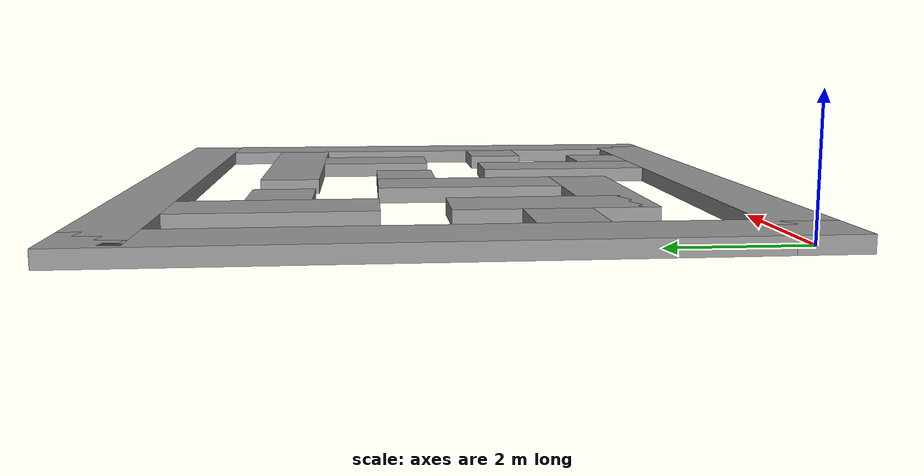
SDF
<?xml version='1.0'?>
<sdf version='1.7'>
  <model name='maze'>
    <pose>4.5 4.5 0 0 -0 0</pose>
    <link name='Wall_11'>
      <collision name='Wall_11_Collision'>
        <geometry>
          <box>
            <size>10 1 0.25</size>
          </box>
        </geometry>
        <pose>0 0 0.125 0 -0 0</pose>
      </collision>
      <visual name='Wall_11_Visual'>
        <pose>0 0 0.125 0 -0 0</pose>
        <geometry>
          <box>
            <size>10 1 0.25</size>
          </box>
        </geometry>
        <material>
          <script>
            <uri>file://media/materials/scripts/gazebo.material</uri>
            <name>Gazebo/Grey</name>
          </script>
          <ambient>1 1 1 1</ambient>
        </material>
        <meta>
          <layer>0</layer>
        </meta>
      </visual>
      <pose>-0 4.5 0 0 -0 3.14159</pose>
    </link>
    <link name='Wall_13'>
      <collision name='Wall_13_Collision'>
        <geometry>
          <box>
            <size>4 1 0.25</size>
          </box>
        </geometry>
        <pose>0 0 0.125 0 -0 0</pose>
      </collision>
      <visual name='Wall_13_Visual'>
        <pose>0 0 0.125 0 -0 0</pose>
        <geometry>
          <box>
            <size>4 1 0.25</size>
          </box>
        </geometry>
        <material>
          <script>
            <uri>file://media/materials/scripts/gazebo.material</uri>
            <name>Gazebo/Grey</name>
          </script>
          <ambient>1 1 1 1</ambient>
        </material>
        <meta>
          <layer>0</layer>
        </meta>
      </visual>
      <pose>-2.5 3 0 0 -0 -1.5708</pose>
    </link>
    <link name='Wall_17'>
      <collision name='Wall_17_Collision'>
        <geometry>
          <box>
            <size>1 1 0.25</size>
          </box>
        </geometry>
        <pose>0 0 0.125 0 -0 0</pose>
      </collision>
      <visual name='Wall_17_Visual'>
        <pose>0 0 0.125 0 -0 0</pose>
        <geometry>
          <box>
            <size>1 1 0.25</size>
          </box>
        </geometry>
        <material>
          <script>
            <uri>file://media/materials/scripts/gazebo.material</uri>
            <name>Gazebo/Grey</name>
          </script>
          <ambient>1 1 1 1</ambient>
        </material>
        <meta>
          <layer>0</layer>
        </meta>
      </visual>
      <pose>-1.5 2.5 0 0 -0 0</pose>
    </link>
    <link name='Wall_19'>
      <collision name='Wall_19_Collision'>
        <geometry>
          <box>
            <size>4 1 0.25</size>
          </box>
        </geometry>
        <pose>0 0 0.125 0 -0 0</pose>
      </collision>
      <visual name='Wall_19_Visual'>
        <pose>0 0 0.125 0 -0 0</pose>
        <geometry>
          <box>
            <size>4 1 0.25</size>
          </box>
        </geometry>
        <material>
          <script>
            <uri>file://media/materials/scripts/gazebo.material</uri>
            <name>Gazebo/Grey</name>
          </script>
          <ambient>1 1 1 1</ambient>
        </material>
        <meta>
          <layer>0</layer>
        </meta>
      </visual>
      <pose>2 2.5 0 0 -0 3.14159</pose>
    </link>
    <link name='Wall_21'>
      <collision name='Wall_21_Collision'>
        <geometry>
          <box>
            <size>2 1 0.25</size>
          </box>
        </geometry>
        <pose>0 0 0.125 0 -0 0</pose>
      </collision>
      <visual name='Wall_21_Visual'>
        <pose>0 0 0.125 0 -0 0</pose>
        <geometry>
          <box>
            <size>2 1 0.25</size>
          </box>
        </geometry>
        <material>
          <script>
            <uri>file://media/materials/scripts/gazebo.material</uri>
            <name>Gazebo/Grey</name>
          </script>
          <ambient>1 1 1 1</ambient>
        </material>
        <meta>
          <layer>0</layer>
        </meta>
      </visual>
      <pose>2.5 1 0 0 -0 1.5708</pose>
    </link>
    <link name='Wall_23'>
      <collision name='Wall_23_Collision'>
        <geometry>
          <box>
            <size>1 1 0.25</size>
          </box>
        </geometry>
        <pose>0 0 0.125 0 -0 0</pose>
      </collision>
      <visual name='Wall_23_Visual'>
        <pose>0 0 0.125 0 -0 0</pose>
        <geometry>
          <box>
            <size>1 1 0.25</size>
          </box>
        </geometry>
        <material>
          <script>
            <uri>file://media/materials/scripts/gazebo.material</uri>
            <name>Gazebo/Grey</name>
          </script>
          <ambient>1 1 1 1</ambient>
        </material>
        <meta>
          <layer>0</layer>
        </meta>
      </visual>
      <pose>-3.5 -1.5 0 0 -0 0</pose>
    </link>
    <link name='Wall_25'>
      <collision name='Wall_25_Collision'>
        <geometry>
          <box>
            <size>3 1 0.25</size>
          </box>
        </geometry>
        <pose>0 0 0.125 0 -0 0</pose>
      </collision>
      <visual name='Wall_25_Visual'>
        <pose>0 0 0.125 0 -0 0</pose>
        <geometry>
          <box>
            <size>3 1 0.25</size>
          </box>
        </geometry>
        <material>
          <script>
            <uri>file://media/materials/scripts/gazebo.material</uri>
            <name>Gazebo/Grey</name>
          </script>
          <ambient>1 1 1 1</ambient>
        </material>
        <meta>
          <layer>0</layer>
        </meta>
      </visual>
      <pose>-2.5 -1.5 0 0 -0 -1.5708</pose>
    </link>
    <link name='Wall_30'>
      <collision name='Wall_30_Collision'>
        <geometry>
          <box>
            <size>3 1 0.25</size>
          </box>
        </geometry>
        <pose>0 0 0.125 0 -0 0</pose>
      </collision>
      <visual name='Wall_30_Visual'>
        <pose>0 0 0.125 0 -0 0</pose>
        <geometry>
          <box>
            <size>3 1 0.25</size>
          </box>
        </geometry>
        <material>
          <script>
            <uri>file://media/materials/scripts/gazebo.material</uri>
            <name>Gazebo/Grey</name>
          </script>
          <ambient>1 1 1 1</ambient>
        </material>
        <meta>
          <layer>0</layer>
        </meta>
      </visual>
      <pose>-1.5 -2.5 0 0 -0 0</pose>
    </link>
    <link name='Wall_32'>
      <collision name='Wall_32_Collision'>
        <geometry>
          <box>
            <size>4 1 0.25</size>
          </box>
        </geometry>
        <pose>0 0 0.125 0 -0 0</pose>
      </collision>
      <visual name='Wall_32_Visual'>
        <pose>0 0 0.125 0 -0 0</pose>
        <geometry>
          <box>
            <size>4 1 0.25</size>
          </box>
        </geometry>
        <material>
          <script>
            <uri>file://media/materials/scripts/gazebo.material</uri>
            <name>Gazebo/Grey</name>
          </script>
          <ambient>1 1 1 1</ambient>
        </material>
        <meta>
          <layer>0</layer>
        </meta>
      </visual>
      <pose>-0.5 -1 0 0 -0 1.5708</pose>
    </link>
    <link name='Wall_34'>
      <collision name='Wall_34_Collision'>
        <geometry>
          <box>
            <size>1 1 0.25</size>
          </box>
        </geometry>
        <pose>0 0 0.125 0 -0 0</pose>
      </collision>
      <visual name='Wall_34_Visual'>
        <pose>0 0 0.125 0 -0 0</pose>
        <geometry>
          <box>
            <size>1 1 0.25</size>
          </box>
        </geometry>
        <material>
          <script>
            <uri>file://media/materials/scripts/gazebo.material</uri>
            <name>Gazebo/Grey</name>
          </script>
          <ambient>1 1 1 1</ambient>
        </material>
        <meta>
          <layer>0</layer>
        </meta>
      </visual>
      <pose>0.5 0.5 0 0 -0 0</pose>
    </link>
    <link name='Wall_36'>
      <collision name='Wall_36_Collision'>
        <geometry>
          <box>
            <size>1 1 0.25</size>
          </box>
        </geometry>
        <pose>0 0 0.125 0 -0 0</pose>
      </collision>
      <visual name='Wall_36_Visual'>
        <pose>0 0 0.125 0 -0 0</pose>
        <geometry>
          <box>
            <size>1 1 0.25</size>
          </box>
        </geometry>
        <material>
          <script>
            <uri>file://media/materials/scripts/gazebo.material</uri>
            <name>Gazebo/Grey</name>
          </script>
          <ambient>1 1 1 1</ambient>
        </material>
        <meta>
          <layer>0</layer>
        </meta>
      </visual>
      <pose>3.5 -1.5 0 0 -0 0</pose>
    </link>
    <link name='Wall_38'>
      <collision name='Wall_38_Collision'>
        <geometry>
          <box>
            <size>3 1 0.25</size>
          </box>
        </geometry>
        <pose>0 0 0.125 0 -0 0</pose>
      </collision>
      <visual name='Wall_38_Visual'>
        <pose>0 0 0.125 0 -0 0</pose>
        <geometry>
          <box>
            <size>3 1 0.25</size>
          </box>
        </geometry>
        <material>
          <script>
            <uri>file://media/materials/scripts/gazebo.material</uri>
            <name>Gazebo/Grey</name>
          </script>
          <ambient>1 1 1 1</ambient>
        </material>
        <meta>
          <layer>0</layer>
        </meta>
      </visual>
      <pose>1.5 -2.5 0 0 -0 1.5708</pose>
    </link>
    <link name='Wall_40'>
      <collision name='Wall_40_Collision'>
        <geometry>
          <box>
            <size>1 1 0.25</size>
          </box>
        </geometry>
        <pose>0 0 0.125 0 -0 0</pose>
      </collision>
      <visual name='Wall_40_Visual'>
        <pose>0 0 0.125 0 -0 0</pose>
        <geometry>
          <box>
            <size>1 1 0.25</size>
          </box>
        </geometry>
        <material>
          <script>
            <uri>file://media/materials/scripts/gazebo.material</uri>
            <name>Gazebo/Grey</name>
          </script>
          <ambient>1 1 1 1</ambient>
        </material>
        <meta>
          <layer>0</layer>
        </meta>
      </visual>
      <pose>2.5 -3.5 0 0 -0 0</pose>
    </link>
    <link name='Wall_5'>
      <collision name='Wall_5_Collision'>
        <geometry>
          <box>
            <size>10 1 0.25</size>
          </box>
        </geometry>
        <pose>0 0 0.125 0 -0 0</pose>
      </collision>
      <visual name='Wall_5_Visual'>
        <pose>0 0 0.125 0 -0 0</pose>
        <geometry>
          <box>
            <size>10 1 0.25</size>
          </box>
        </geometry>
        <material>
          <script>
            <uri>file://media/materials/scripts/gazebo.material</uri>
            <name>Gazebo/Grey</name>
          </script>
          <ambient>1 1 1 1</ambient>
        </material>
        <meta>
          <layer>0</layer>
        </meta>
      </visual>
      <pose>-4.5 0 0 0 -0 1.5708</pose>
    </link>
    <link name='Wall_7'>
      <collision name='Wall_7_Collision'>
        <geometry>
          <box>
            <size>10 1 0.25</size>
          </box>
        </geometry>
        <pose>0 0 0.125 0 -0 0</pose>
      </collision>
      <visual name='Wall_7_Visual'>
        <pose>0 0 0.125 0 -0 0</pose>
        <geometry>
          <box>
            <size>10 1 0.25</size>
          </box>
        </geometry>
        <material>
          <script>
            <uri>file://media/materials/scripts/gazebo.material</uri>
            <name>Gazebo/Grey</name>
          </script>
          <ambient>1 1 1 1</ambient>
        </material>
        <meta>
          <layer>0</layer>
        </meta>
      </visual>
      <pose>-0 -4.5 0 0 -0 0</pose>
    </link>
    <link name='Wall_9'>
      <collision name='Wall_9_Collision'>
        <geometry>
          <box>
            <size>10 1 0.25</size>
          </box>
        </geometry>
        <pose>0 0 0.125 0 -0 0</pose>
      </collision>
      <visual name='Wall_9_Visual'>
        <pose>0 0 0.125 0 -0 0</pose>
        <geometry>
          <box>
            <size>10 1 0.25</size>
          </box>
        </geometry>
        <material>
          <script>
            <uri>file://media/materials/scripts/gazebo.material</uri>
            <name>Gazebo/Grey</name>
          </script>
          <ambient>1 1 1 1</ambient>
        </material>
        <meta>
          <layer>0</layer>
        </meta>
      </visual>
      <pose>4.5 0 0 0 -0 1.5708</pose>
    </link>
    <static>1</static>
  </model>
</sdf>
